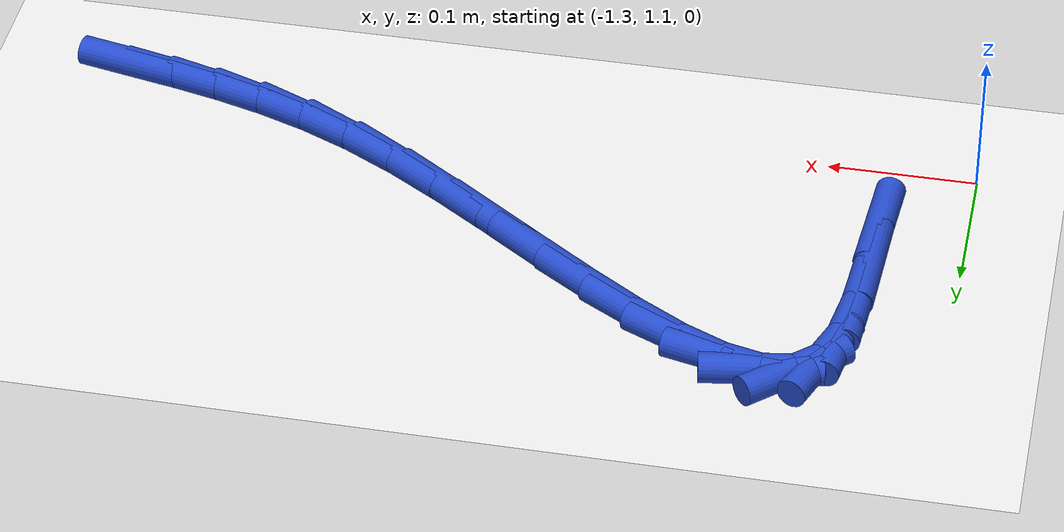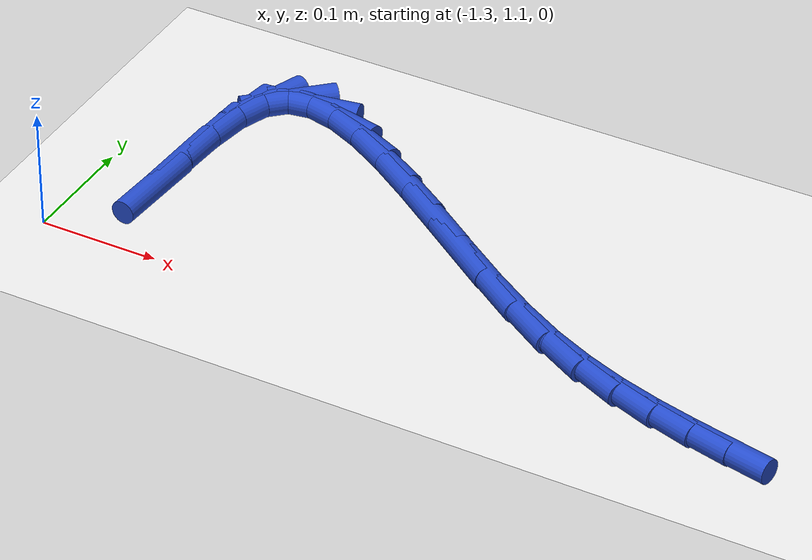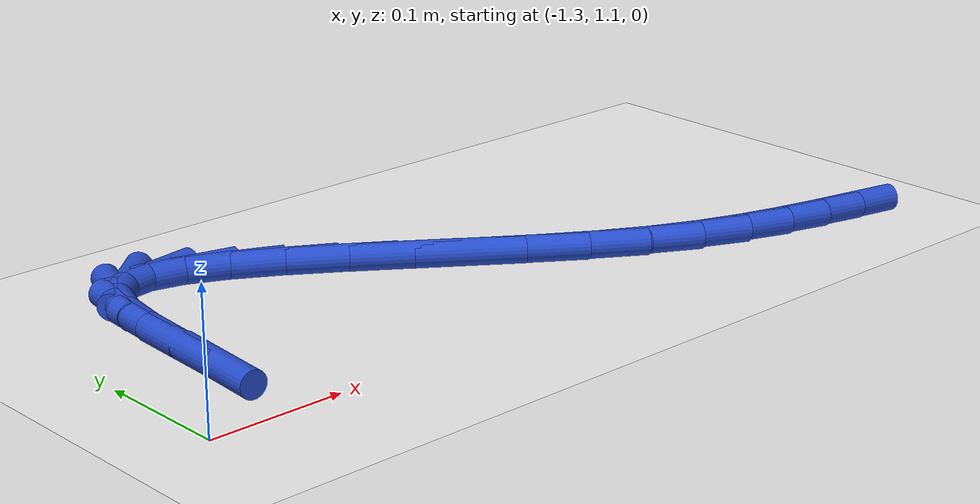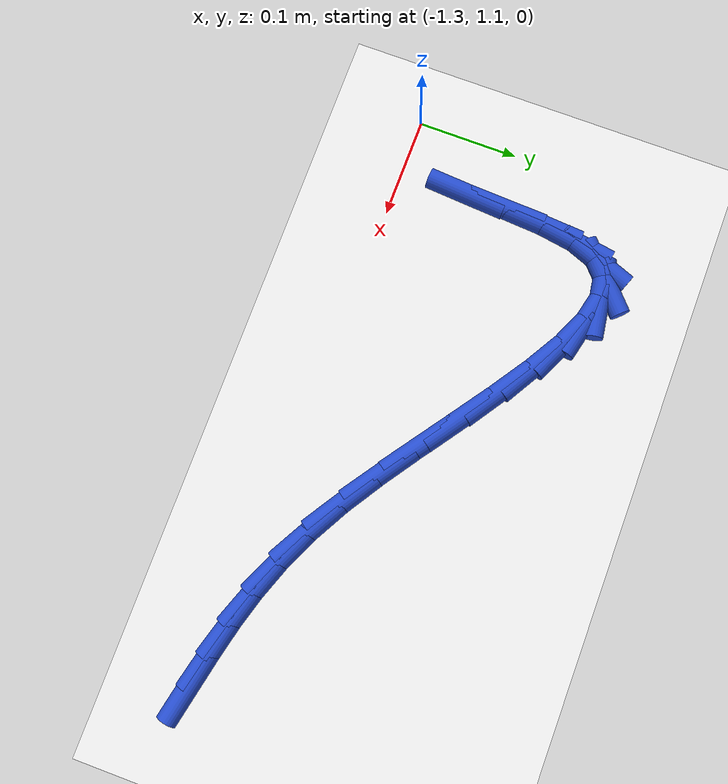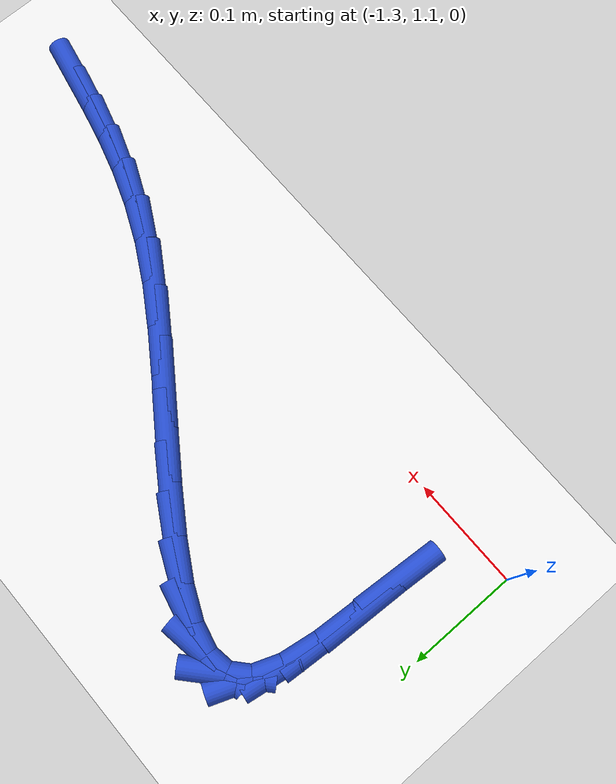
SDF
<sdf version="1.6">
 <world name="default">
  <model name="ground_plane">
   <static>1</static>
   <link name="link">
    <collision name="collision">
     <geometry><plane><normal>0 0 1</normal><size>100 100</size></plane></geometry>
     <surface><friction><ode><mu>100</mu><mu2>50</mu2></ode></friction></surface>
    </collision>
    <visual name="visual">
     <cast_shadows>0</cast_shadows>
     <geometry><plane><normal>0 0 1</normal><size>100 100</size></plane></geometry>
     <material>
      <script><uri>file://media/materials/scripts/gazebo.material</uri><name>Gazebo/WhiteGlow</name></script>
     </material>
    </visual>
   </link>
  </model>
  <model name="line">
   <link name="link_42">
    <pose>-0.7164117317384318 1.0886736295703712 0.01 0 1.57 -0.20811483407742346</pose>
    <collision name="collision">
     <geometry><cylinder><radius>0.01</radius><length>0.08</length></cylinder></geometry>
    </collision>
    <visual name="visual">
     <material>
      <script><name>Gazebo/Blue</name><uri>file://media/materials/scripts/gazebo.material</uri></script>
     </material>
     <geometry><cylinder><radius>0.01</radius><length>0.08</length></cylinder></geometry>
    </visual>
   </link>
   <link name="link_43">
    <pose>-0.7482858912572327 1.0954045731362827 0.01 0 1.57 -0.23663949010743343</pose>
    <collision name="collision">
     <geometry><cylinder><radius>0.01</radius><length>0.08</length></cylinder></geometry>
    </collision>
    <visual name="visual">
     <material>
      <script><name>Gazebo/Blue</name><uri>file://media/materials/scripts/gazebo.material</uri></script>
     </material>
     <geometry><cylinder><radius>0.01</radius><length>0.08</length></cylinder></geometry>
    </visual>
   </link>
   <link name="link_44">
    <pose>-0.7803098364660456 1.1031273991591677 0.01 0 1.57 -0.28552591077165795</pose>
    <collision name="collision">
     <geometry><cylinder><radius>0.01</radius><length>0.08</length></cylinder></geometry>
    </collision>
    <visual name="visual">
     <material>
      <script><name>Gazebo/Blue</name><uri>file://media/materials/scripts/gazebo.material</uri></script>
     </material>
     <geometry><cylinder><radius>0.01</radius><length>0.08</length></cylinder></geometry>
    </visual>
   </link>
   <link name="link_45">
    <pose>-0.8128120827964913 1.112668327714515 0.01 0 1.57 -0.35070169906277987</pose>
    <collision name="collision">
     <geometry><cylinder><radius>0.01</radius><length>0.08</length></cylinder></geometry>
    </collision>
    <visual name="visual">
     <material>
      <script><name>Gazebo/Blue</name><uri>file://media/materials/scripts/gazebo.material</uri></script>
     </material>
     <geometry><cylinder><radius>0.01</radius><length>0.08</length></cylinder></geometry>
    </visual>
   </link>
   <link name="link_46">
    <pose>-0.8461211456801883 1.1248535788778127 0.01 0 1.57 -0.42660946465348676</pose>
    <collision name="collision">
     <geometry><cylinder><radius>0.01</radius><length>0.08</length></cylinder></geometry>
    </collision>
    <visual name="visual">
     <material>
      <script><name>Gazebo/Blue</name><uri>file://media/materials/scripts/gazebo.material</uri></script>
     </material>
     <geometry><cylinder><radius>0.01</radius><length>0.08</length></cylinder></geometry>
    </visual>
   </link>
   <link name="link_47">
    <pose>-0.8805655405487569 1.1405093727245499 0.01 0 1.57 -0.5064786088960402</pose>
    <collision name="collision">
     <geometry><cylinder><radius>0.01</radius><length>0.08</length></cylinder></geometry>
    </collision>
    <visual name="visual">
     <material>
      <script><name>Gazebo/Blue</name><uri>file://media/materials/scripts/gazebo.material</uri></script>
     </material>
     <geometry><cylinder><radius>0.01</radius><length>0.08</length></cylinder></geometry>
    </visual>
   </link>
   <link name="link_48">
    <pose>-0.916454971192547 1.1604188410544227 0.01 0 1.57 -0.5700220450448398</pose>
    <collision name="collision">
     <geometry><cylinder><radius>0.01</radius><length>0.08</length></cylinder></geometry>
    </collision>
    <visual name="visual">
     <material>
      <script><name>Gazebo/Blue</name><uri>file://media/materials/scripts/gazebo.material</uri></script>
     </material>
     <geometry><cylinder><radius>0.01</radius><length>0.08</length></cylinder></geometry>
    </visual>
   </link>
   <link name="link_49">
    <pose>-0.953604222461999 1.1842314982718112 0.01 0 1.57 -0.606479181747917</pose>
    <collision name="collision">
     <geometry><cylinder><radius>0.01</radius><length>0.08</length></cylinder></geometry>
    </collision>
    <visual name="visual">
     <material>
      <script><name>Gazebo/Blue</name><uri>file://media/materials/scripts/gazebo.material</uri></script>
     </material>
     <geometry><cylinder><radius>0.01</radius><length>0.08</length></cylinder></geometry>
    </visual>
   </link>
   <link name="link_50">
    <pose>-0.9912958873776738 1.2103778674123125 0.01 0 1.57 -0.6215122622146935</pose>
    <collision name="collision">
     <geometry><cylinder><radius>0.01</radius><length>0.08</length></cylinder></geometry>
    </collision>
    <visual name="visual">
     <material>
      <script><name>Gazebo/Blue</name><uri>file://media/materials/scripts/gazebo.material</uri></script>
     </material>
     <geometry><cylinder><radius>0.01</radius><length>0.08</length></cylinder></geometry>
    </visual>
   </link>
   <link name="link_51">
    <pose>-1.028786280418254 1.2372282802159507 0.01 0 1.57 -0.6169969696944104</pose>
    <collision name="collision">
     <geometry><cylinder><radius>0.01</radius><length>0.08</length></cylinder></geometry>
    </collision>
    <visual name="visual">
     <material>
      <script><name>Gazebo/Blue</name><uri>file://media/materials/scripts/gazebo.material</uri></script>
     </material>
     <geometry><cylinder><radius>0.01</radius><length>0.08</length></cylinder></geometry>
    </visual>
   </link>
   <link name="link_52">
    <pose>-1.0653317160624214 1.2631530684227488 0.01 0 1.57 -0.5906124862228894</pose>
    <collision name="collision">
     <geometry><cylinder><radius>0.01</radius><length>0.08</length></cylinder></geometry>
    </collision>
    <visual name="visual">
     <material>
      <script><name>Gazebo/Blue</name><uri>file://media/materials/scripts/gazebo.material</uri></script>
     </material>
     <geometry><cylinder><radius>0.01</radius><length>0.08</length></cylinder></geometry>
    </visual>
   </link>
   <link name="link_53">
    <pose>-1.1001885087888583 1.2865225637727309 0.01 0 1.57 -0.5342708762013731</pose>
    <collision name="collision">
     <geometry><cylinder><radius>0.01</radius><length>0.08</length></cylinder></geometry>
    </collision>
    <visual name="visual">
     <material>
      <script><name>Gazebo/Blue</name><uri>file://media/materials/scripts/gazebo.material</uri></script>
     </material>
     <geometry><cylinder><radius>0.01</radius><length>0.08</length></cylinder></geometry>
    </visual>
   </link>
   <link name="link_54">
    <pose>-1.132612973076247 1.3057070980059202 0.01 0 1.57 -0.42875497078041486</pose>
    <collision name="collision">
     <geometry><cylinder><radius>0.01</radius><length>0.08</length></cylinder></geometry>
    </collision>
    <visual name="visual">
     <material>
      <script><name>Gazebo/Blue</name><uri>file://media/materials/scripts/gazebo.material</uri></script>
     </material>
     <geometry><cylinder><radius>0.01</radius><length>0.08</length></cylinder></geometry>
    </visual>
   </link>
   <link name="link_55">
    <pose>-1.1618614234032696 1.3190770028623402 0.01 0 1.57 -0.22981465669670645</pose>
    <collision name="collision">
     <geometry><cylinder><radius>0.01</radius><length>0.08</length></cylinder></geometry>
    </collision>
    <visual name="visual">
     <material>
      <script><name>Gazebo/Blue</name><uri>file://media/materials/scripts/gazebo.material</uri></script>
     </material>
     <geometry><cylinder><radius>0.01</radius><length>0.08</length></cylinder></geometry>
    </visual>
   </link>
   <link name="link_56">
    <pose>-1.1871901742486084 1.3250026100820147 0.01 0 1.57 0.1511869761358742</pose>
    <collision name="collision">
     <geometry><cylinder><radius>0.01</radius><length>0.08</length></cylinder></geometry>
    </collision>
    <visual name="visual">
     <material>
      <script><name>Gazebo/Blue</name><uri>file://media/materials/scripts/gazebo.material</uri></script>
     </material>
     <geometry><cylinder><radius>0.01</radius><length>0.08</length></cylinder></geometry>
    </visual>
   </link>
   <link name="link_57">
    <pose>-1.2078555400909454 1.321854251404967 0.01 0 1.57 0.7371158665554869</pose>
    <collision name="collision">
     <geometry><cylinder><radius>0.01</radius><length>0.08</length></cylinder></geometry>
    </collision>
    <visual name="visual">
     <material>
      <script><name>Gazebo/Blue</name><uri>file://media/materials/scripts/gazebo.material</uri></script>
     </material>
     <geometry><cylinder><radius>0.01</radius><length>0.08</length></cylinder></geometry>
    </visual>
   </link>
   <link name="link_58">
    <pose>-1.2231139341212829 1.3080024573017517 0.01 0 1.57 1.206753110256735</pose>
    <collision name="collision">
     <geometry><cylinder><radius>0.01</radius><length>0.08</length></cylinder></geometry>
    </collision>
    <visual name="visual">
     <material>
      <script><name>Gazebo/Blue</name><uri>file://media/materials/scripts/gazebo.material</uri></script>
     </material>
     <geometry><cylinder><radius>0.01</radius><length>0.08</length></cylinder></geometry>
    </visual>
   </link>
   <link name="link_59">
    <pose>-1.2327136593693917 1.2828080452623858 0.01 0 1.57 1.4149769873760727</pose>
    <collision name="collision">
     <geometry><cylinder><radius>0.01</radius><length>0.08</length></cylinder></geometry>
    </collision>
    <visual name="visual">
     <material>
      <script><name>Gazebo/Blue</name><uri>file://media/materials/scripts/gazebo.material</uri></script>
     </material>
     <geometry><cylinder><radius>0.01</radius><length>0.08</length></cylinder></geometry>
    </visual>
   </link>
   <link name="link_60">
    <pose>-1.2380370039415707 1.2489214193545006 0.01 0 1.57 1.5003813156631536</pose>
    <collision name="collision">
     <geometry><cylinder><radius>0.01</radius><length>0.08</length></cylinder></geometry>
    </collision>
    <visual name="visual">
     <material>
      <script><name>Gazebo/Blue</name><uri>file://media/materials/scripts/gazebo.material</uri></script>
     </material>
     <geometry><cylinder><radius>0.01</radius><length>0.08</length></cylinder></geometry>
    </visual>
   </link>
   <link name="link_61">
    <pose>-1.240805105815062 1.2096751661229674 0.01 0 1.57 1.5239722589209606</pose>
    <collision name="collision">
     <geometry><cylinder><radius>0.01</radius><length>0.08</length></cylinder></geometry>
    </collision>
    <visual name="visual">
     <material>
      <script><name>Gazebo/Blue</name><uri>file://media/materials/scripts/gazebo.material</uri></script>
     </material>
     <geometry><cylinder><radius>0.01</radius><length>0.08</length></cylinder></geometry>
    </visual>
   </link>
   <link name="link_62">
    <pose>-1.2427391029671067 1.1684018721126577 0.01 0 1.57 1.500330519350178</pose>
    <collision name="collision">
     <geometry><cylinder><radius>0.01</radius><length>0.08</length></cylinder></geometry>
    </collision>
    <visual name="visual">
     <material>
      <script><name>Gazebo/Blue</name><uri>file://media/materials/scripts/gazebo.material</uri></script>
     </material>
     <geometry><cylinder><radius>0.01</radius><length>0.08</length></cylinder></geometry>
    </visual>
   </link>
  </model>
 </world>
</sdf>
